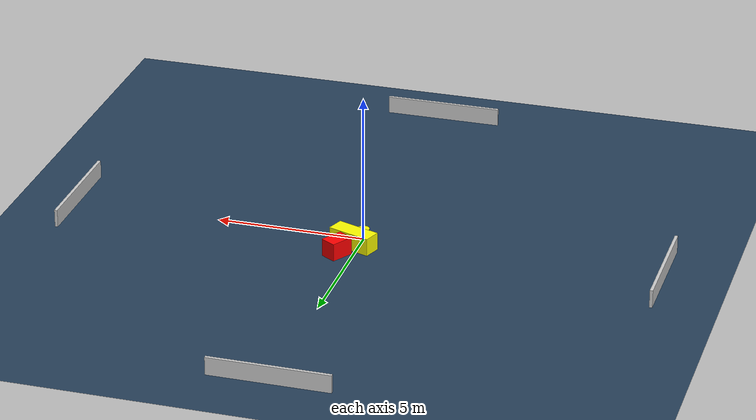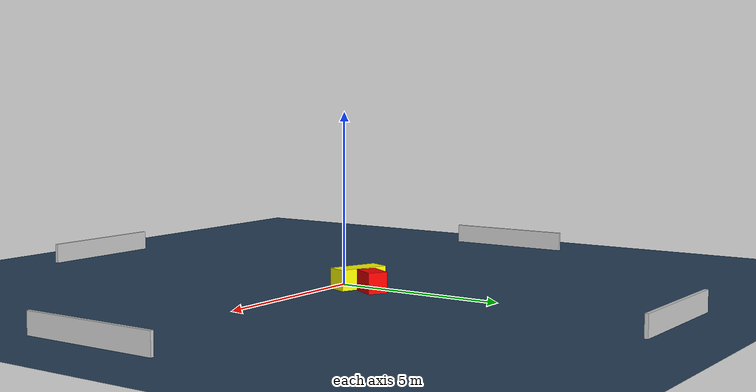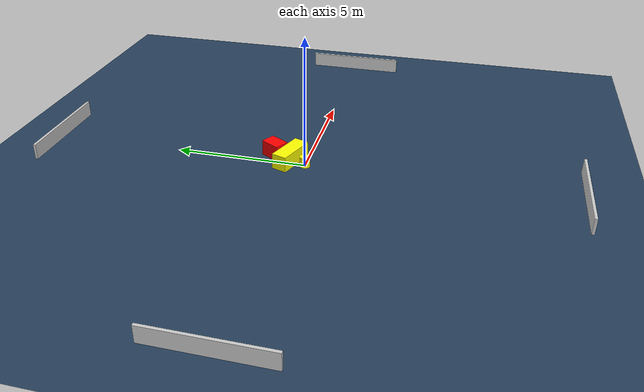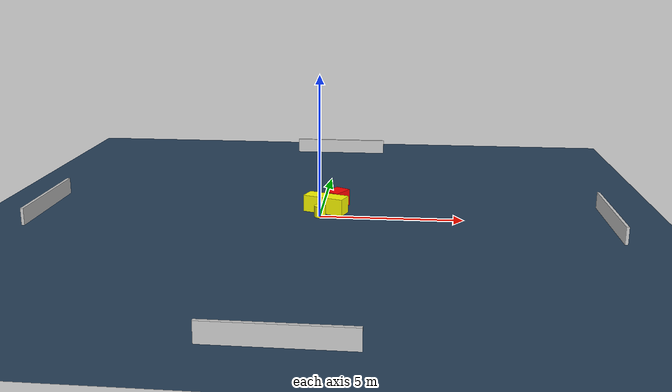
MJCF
<?xml version="1.0" ?>
<mujoco model="generated_environment">
  <option timestep="0.01" integrator="RK4" cone="elliptic"/>
  <default>
    <geom density="1"/>
  </default>
  <asset>
    <texture builtin="gradient" height="3072" name="skybox" rgb1="0.3 0.5 0.7" rgb2="0 0 0" type="skybox" width="512"/>
    <texture builtin="checker" height="300" name="groundplane" rgb1="0.2 0.3 0.4" rgb2="0.1 0.2 0.3" type="2d" width="300"/>
    <material name="groundplane" reflectance="0.2" texrepeat="5 5" texture="groundplane"/>
  </asset>
  <worldbody>
    <light dir="0 0 -1" directional="true" pos="0 0 1.5"/>
    <geom condim="3" friction="0.5 0.005 0.001" material="groundplane" name="floor" pos="0 0 0" size="0 0 0.05" type="plane"/>
    <body name="walls">
      <geom name="wall_1" condim="4" pos="-10.0 0.0 0.3" rgba="0.800000011920929 0.800000011920929 0.800000011920929 1.0" size="0.05 2.0 0.3" type="box"/>
      <geom name="wall_2" condim="4" pos="10.0 0.0 0.3" rgba="0.800000011920929 0.800000011920929 0.800000011920929 1.0" size="0.05 2.0 0.3" type="box"/>
      <geom name="wall_3" condim="4" pos="0.0 -10.0 0.3" rgba="0.800000011920929 0.800000011920929 0.800000011920929 1.0" size="2.0 0.05 0.3" type="box"/>
      <geom name="wall_4" condim="4" pos="0.0 10.0 0.3" rgba="0.800000011920929 0.800000011920929 0.800000011920929 1.0" size="2.0 0.05 0.3" type="box"/>
    </body>
    <body name="robot">
      <joint name="joint_x" type="slide" pos="0 0 0" axis="1 0 0"/>
      <joint name="joint_y" type="slide" pos="0 0 0" axis="0 1 0"/>
      <geom name="robot" type="cylinder" pos="0.0 0.0 0.2" size="0.2 0.2 0.0" mass="5.0" friction="1.0 0.005 0.0001" condim="4" rgba="1.0 1.0 0.0 1.0"/>
    </body>
    <body name="obstacle_1_movable">
      <geom name="obstacle_1_movable" condim="4" pos="0.16137335500227026 0.5996890457000049 0.3" euler="0 0 160.12998421572368" friction="0.0 0.005 0.001" rgba="1.0 1.0 0.0 1.0" size="0.752633020615159 0.2951761774031194 0.3" type="box" mass="0.1"/>
      <joint type="free"/>
    </body>
    <body name="obstacle_2_static">
      <geom name="obstacle_2_static" condim="4" pos="0.5124739311231393 1.305571953534169 0.3" euler="0 0 148.72633064897116" friction="0.0 0.005 0.001" rgba="1.0 0.0 0.0 1.0" size="0.28148079139252774 0.3958361963691155 0.3" type="box"/>
    </body>
  </worldbody>
  <actuator>
    <motor name="actuator_x" joint="joint_x" gear="1" ctrlrange="-1 1"/>
    <motor name="actuator_y" joint="joint_y" gear="1" ctrlrange="-1 1"/>
  </actuator>
</mujoco>
